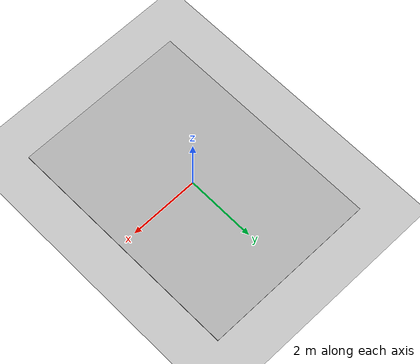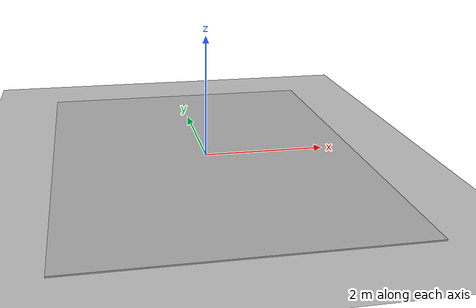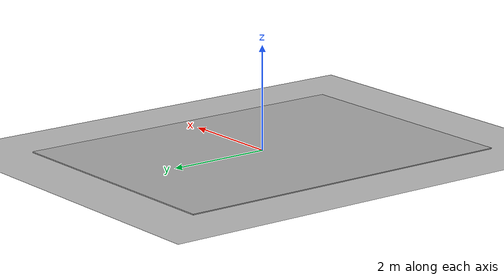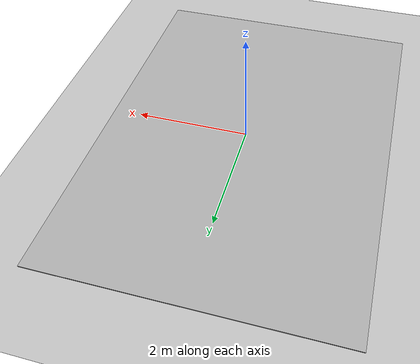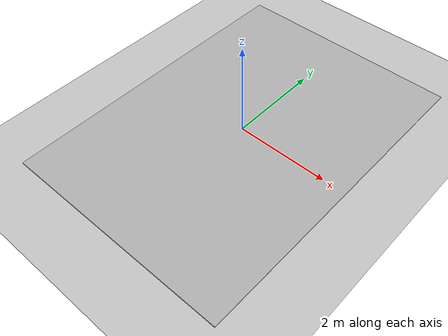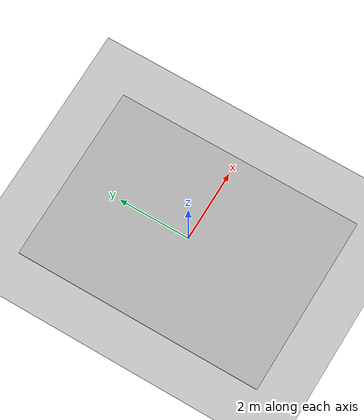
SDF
<sdf version='1.6'>
  <world name='default'>
    <model name='ground_plane'>
      <static>1</static>
      <link name='link'>
        <collision name='collision'>
          <geometry>
            <plane>
              <normal>0 0 1</normal>
              <size>100 100</size>
            </plane>
          </geometry>
          <surface>
            <contact>
              <collide_bitmask>65535</collide_bitmask>
              <ode/>
            </contact>
            <friction>
              <ode>
                <mu>100</mu>
                <mu2>50</mu2>
              </ode>
              <torsional>
                <ode/>
              </torsional>
            </friction>
            <bounce/>
          </surface>
          <max_contacts>10</max_contacts>
        </collision>
        <visual name='visual'>
          <cast_shadows>0</cast_shadows>
          <geometry>
            <plane>
              <normal>0 0 1</normal>
              <size>100 100</size>
            </plane>
          </geometry>
          <material>
            <script>
              <uri>file://media/materials/scripts/gazebo.material</uri>
              <name>Gazebo/Grey</name>
            </script>
          </material>
        </visual>
        <self_collide>0</self_collide>
        <enable_wind>0</enable_wind>
        <kinematic>0</kinematic>
      </link>
    </model>
    <gravity>0 0 -9.8</gravity>
    <magnetic_field>6e-06 2.3e-05 -4.2e-05</magnetic_field>
    <atmosphere type='adiabatic'/>
    <physics name='default_physics' default='0' type='ode'>
      <max_step_size>0.001</max_step_size>
      <real_time_factor>1</real_time_factor>
      <real_time_update_rate>1000</real_time_update_rate>
    </physics>
    <scene>
      <ambient>0.4 0.4 0.4 1</ambient>
      <background>0.7 0.7 0.7 1</background>
      <shadows>1</shadows>
    </scene>
    <audio>
      <device>default</device>
    </audio>
    <wind/>
    <spherical_coordinates>
      <surface_model>EARTH_WGS84</surface_model>
      <latitude_deg>0</latitude_deg>
      <longitude_deg>0</longitude_deg>
      <elevation>0</elevation>
      <heading_deg>0</heading_deg>
    </spherical_coordinates>
    <include>
      <uri>model://Test_site</uri>
    </include>

    <light name='user_directional_light_0' type='directional'>
      <pose frame=''>0.38139 4.93156 1 0 -0 0</pose>
      <diffuse>1 1 1 1</diffuse>
      <specular>1 1 1 1</specular>
      <direction>0.1 0.1 -0.9</direction>
      <attenuation>
        <range>20</range>
        <constant>0.5</constant>
        <linear>0.01</linear>
        <quadratic>0.001</quadratic>
      </attenuation>
      <cast_shadows>1</cast_shadows>
    </light>
    <light name='user_directional_light_1' type='directional'>
      <pose frame=''>0.38139 4.93156 1 0 -0 0</pose>
      <diffuse>1 1 1 1</diffuse>
      <specular>1 1 1 1</specular>
      <direction>0.1 0.5 -0.9</direction>
      <attenuation>
        <range>20</range>
        <constant>0.5</constant>
        <linear>0.01</linear>
        <quadratic>0.001</quadratic>
      </attenuation>
      <cast_shadows>1</cast_shadows>
    </light>

    <gui fullscreen='0'>
      <camera name='user_camera'>
        <pose frame=''>0.917652 -5.57788 5.929 0 0.521793 1.45617</pose>
        <view_controller>orbit</view_controller>
        <projection_type>perspective</projection_type>
      </camera>
    </gui>
  </world>
</sdf>

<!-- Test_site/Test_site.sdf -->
<sdf version='1.5'>
  <model name='Test_site'>
    <static>true</static>
    <link name="link">
      <collision name="collision">
        <geometry>
          <box>
            <size>5 6.879 .02</size>
          </box>
        </geometry>
      </collision>
      <visual name="visual">
        <cast_shadows>false</cast_shadows>
        <geometry>
          <box>
            <size>5 6.879 .02</size>
          </box>
        </geometry>
        <material>
          <script>
            <uri>model://Test_site/materials/scripts</uri>
            <uri>model://Test_site/materials/textures</uri>
            <name>aruco/Image</name>
          </script>
        </material>
      </visual>
    </link>
  </model>
</sdf>
